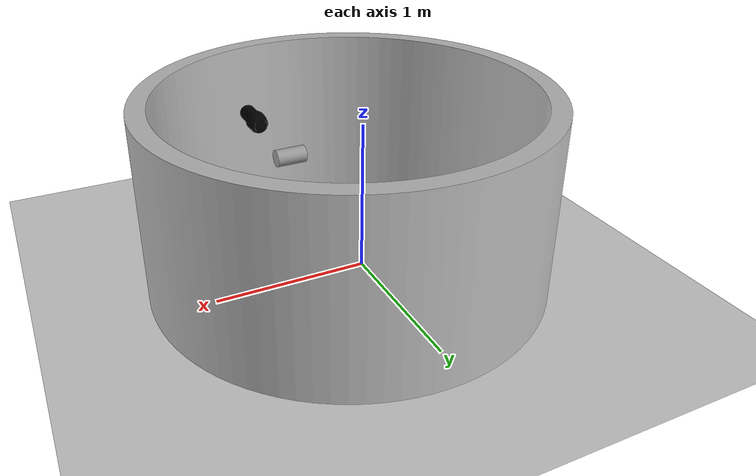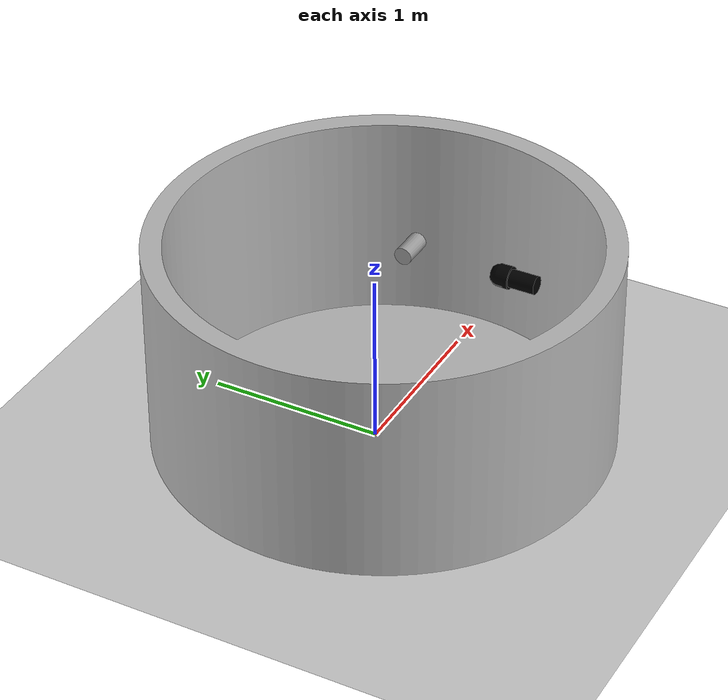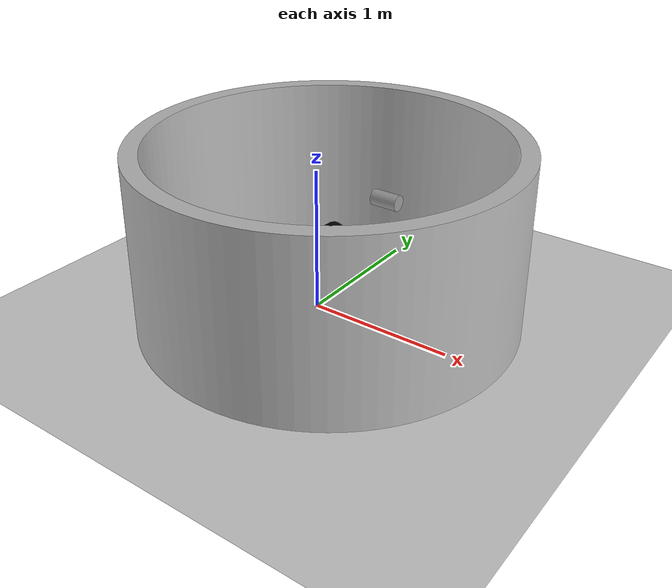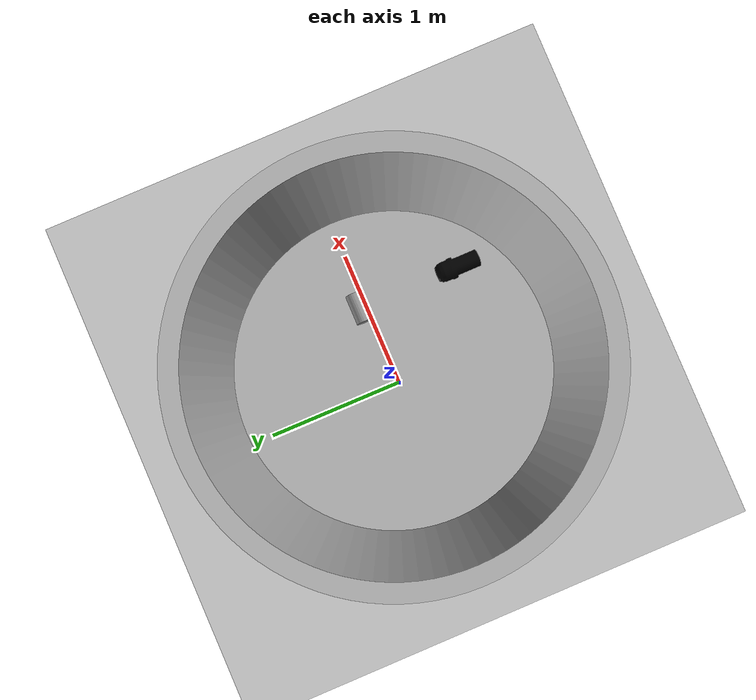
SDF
<?xml version="1.0" ?>
<sdf version="1.6">
  <world name="default">
    <include>
      <uri>model://ground_plane</uri>
    </include>
    <include>
      <uri>model://sun</uri>
    </include>

    <gui>
      <camera name='user_camera'>
        <pose>2.52 -2.65 3.73 0 0.66 2.42</pose>
      </camera>
    </gui>

    <!-- basement tank -->
    <include>
      <uri>model://cylinder_sonar_tank</uri>
      <name>cylinder_sonar_tank</name>
      <pose>0.10 0.0 0 0 0 0</pose>
      <static>true</static>
    </include>

    <!-- cylinder target -->
    <include>
      <uri>model://uw_apl_rod</uri>
      <pose>0.5 0.0508 0.9144 0 1.5709 0</pose>
      <static>true</static>
    </include>

    <!-- 30 deg -->

    <!-- 15 deg -->

    <!-- Oculus m1200d -->
    <!-- Sonar placed at 12" below water surface, 20" from the sonar tank wall -->
    <!-- zero roll and pitch, the water is ~48" deep -->
    <include>
      <uri>model://oculus_m1200d_nps_multibeam_HF</uri>
      <name>oculus_m1200d</name>
      <pose>0.5 -0.5 0.9144 0 0 1.5709</pose>
      <static>true</static>
    </include>

  </world>
</sdf>

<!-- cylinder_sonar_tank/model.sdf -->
<sdf version="1.6">
  <model name="cylinder_sonar_tank">
    <link name="link">
      <inertial>
        <pose>0 0 0 0 0 0</pose>
        <mass>1000.0</mass>
        <inertia>
          <ixx>0.083</ixx>
          <ixy>0.0</ixy>
          <ixz>0.0</ixz>
          <iyy>0.083</iyy>
          <iyz>0.0</iyz>
          <izz>0.083</izz>
        </inertia>
      </inertial>
      <collision name="collision">
        <geometry>
          <mesh>
            <uri>model://cylinder_sonar_tank/meshes/cylinder_sonar_tank.stl</uri>
            <!-- inner diameter of 92". The water is ~48" deep -->
            <scale>1.1684 1.1684 0.6096</scale>
          </mesh>
        </geometry>
      </collision>
      <visual name="visual">
        <geometry>
          <mesh>
            <uri>model://cylinder_sonar_tank/meshes/COLLISION_cylinder_sonar_tank.stl</uri>
            <!-- inner diameter of 92". The water is ~48" deep -->
            <scale>1.1684 1.1684 0.6096</scale>
          </mesh>
        </geometry>
      </visual>
    </link>
  </model>
</sdf>

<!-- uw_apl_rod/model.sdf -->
<sdf version="1.6">
  <model name ='uw_apl_rod'>
    <link name='link'>
      <inertial>
        <mass>1</mass>
        <inertia>
          <ixx>0.145833</ixx>
          <ixy>0</ixy>
          <ixz>0</ixz>
          <iyy>0.145833</iyy>
          <iyz>0</iyz>
          <izz>0.125</izz>
        </inertia>
        <pose frame=''>0 0 0 0 0 0</pose>
      </inertial>
      <collision name='cylinder'>
        <geometry>
          <cylinder>
            <radius>0.0508</radius>
            <length>0.1778</length>
          </cylinder>
        </geometry>
      </collision>
      <visual name='visual'>
        <geometry>
          <cylinder>
            <radius>0.0508</radius>
            <length>0.1778</length>
          </cylinder>
        </geometry>
        <material>
          <script>
            <name>Gazebo/Grey</name>
            <uri>file://media/materials/scripts/gazebo.material</uri>
          </script>
        </material>
      </visual>
      <self_collide>0</self_collide>
      <enable_wind>0</enable_wind>
      <kinematic>0</kinematic>
    </link>
  </model>
</sdf>

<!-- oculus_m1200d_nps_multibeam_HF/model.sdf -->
<sdf version="1.6">
  <model name="oculus_m1200d">
    <link name="forward_sonar_link">
      <inertial>
        <pose>0 0 0 0 0 0</pose>
        <mass>4.35</mass>
        <inertia>
          <ixx>0.0360</ixx>          <!-- 1/12ml^2 -->
          <ixy>0</ixy>
          <ixz>0</ixz>
          <iyy>0</iyy>
          <iyz>0</iyz>
          <izz>0.0360</izz>
        </inertia>
      </inertial>
      <collision name="collision">
        <geometry>
          <mesh>
            <uri>model://oculus_m1200d_nps_multibeam_HF/meshes/COLLISION-p900.dae</uri>
          </mesh>
        </geometry>
      </collision>
      <visual name="visual">
        <geometry>
          <mesh>
            <uri>model://oculus_m1200d_nps_multibeam_HF/meshes/p900.dae</uri>
          </mesh>
        </geometry>
        <material> <!-- bright material -->
          <ambient>0 0 0 1</ambient>
          <diffuse>0 0 0 1</diffuse>
          <specular>0 0 0 0</specular>
          <emissive>0.2 0.2 1.0 1</emissive>
        </material>
      </visual>

      <sensor name="image_sonar" type="depth">
        <visualize>true</visualize>
        <always_on>true</always_on>
        <update_rate>10</update_rate>
        <camera>
          <!-- 60 degrees for the oculus-m1200d at 2.1MHz mode -->
          <horizontal_fov>1.0471975512</horizontal_fov>
          <image>
            <width>512</width>
            <!-- Set vertical FOV by setting image height -->
            <!-- For 12 deg. (spec sheet), Here it's 24 deg-->
            <height>204</height>
            <format>R8G8B8</format>
          </image>
          <clip>
            <near>0.01</near>            <!-- optimal 2m-60m -->
            <far>20</far>
          </clip>
          <depth_camera>
            <output>depths</output>
          </depth_camera>
          <save enabled="false">
            <path>/tmp/camera</path>
          </save>
        </camera>
        <plugin filename="libnps_multibeam_sonar_ros_plugin.so" name="forward_sonar">
          <!-- Sonar properties -->
          <sonarFreq>2100e3</sonarFreq>
          <bandwidth>265.5e3</bandwidth>
          <soundSpeed>1500</soundSpeed>
          <sourceLevel>170</sourceLevel>
          <maxDistance>2</maxDistance>
          <constantReflectivity>false</constantReflectivity>
          <!-- The CSV databsefile is located at the worlds folder -->
          <reflectivityDatabaseFile>variationalReflectivityDatabase_APL.csv</reflectivityDatabaseFile>
          <sensorGain>0.2</sensorGain>
          <plotScaler>2.5</plotScaler>
          <writeLog>true</writeLog>
          <debugFlag>false</debugFlag>
          <writeFrameInterval>5</writeFrameInterval>
          <!-- This name is prepended to ROS topics -->
          <cameraName>oculus_m1200d</cameraName>
          <!-- ROS publication topics -->
          <imageTopicName>image_raw</imageTopicName>
          <cameraInfoTopicName>image_raw/camera_info</cameraInfoTopicName>
          <pointCloudTopicName>point_cloud</pointCloudTopicName>
          <depthImageTopicName>image_depth</depthImageTopicName>
          <depthImageCameraInfoTopicName>image_depth/camera_info</depthImageCameraInfoTopicName>
          <sonarImageRawTopicName>sonar_image_raw</sonarImageRawTopicName>
          <sonarImageTopicName>sonar_image</sonarImageTopicName>
          <frameName>forward_sonar_optical_link</frameName>
        </plugin>
      </sensor>
    </link>

  </model>
</sdf>
